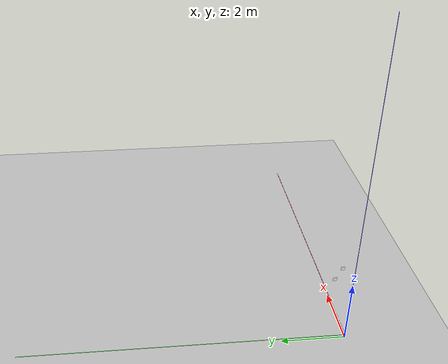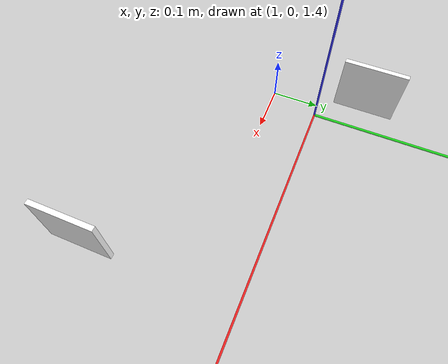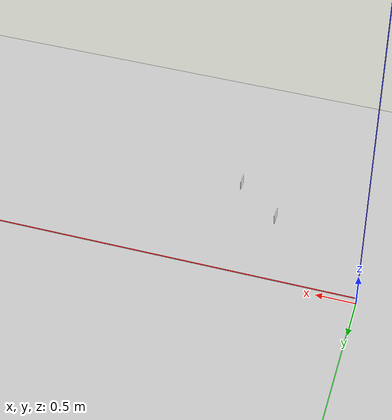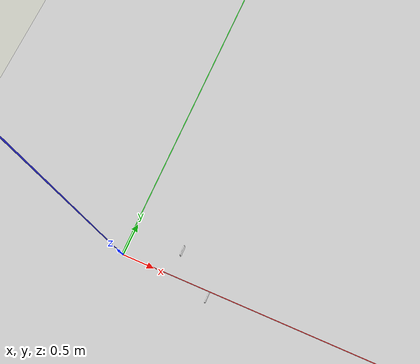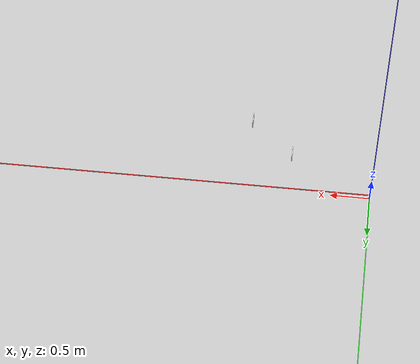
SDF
<sdf version="1.9">
 <world name="apriltag_two_tags">
  <physics name="4ms" type="ignore">
   <max_step_size>0.004</max_step_size>
   <real_time_factor>1.0</real_time_factor>
  </physics>
  <plugin filename="gz-sim-physics-system" name="gz::sim::systems::Physics"/>
  <plugin filename="gz-sim-sensors-system" name="gz::sim::systems::Sensors">
   <render_engine>ogre2</render_engine>
  </plugin>
  <plugin filename="gz-sim-user-commands-system" name="gz::sim::systems::UserCommands"/>
  <plugin filename="gz-sim-scene-broadcaster-system" name="gz::sim::systems::SceneBroadcaster"/>
  <plugin filename="gz-sim-imu-system" name="gz::sim::systems::Imu"/>
  <plugin filename="gz-sim-navsat-system" name="gz::sim::systems::NavSat"/>
  <gravity>0 0 -9.8000000000000007</gravity>
  <magnetic_field>5.5644999999999998e-06 2.2875799999999999e-05 -4.2388400000000002e-05</magnetic_field>
  <atmosphere type="adiabatic"/>
  <scene><ambient>1.0 1.0 1.0</ambient><background>0.8 0.8 0.8</background></scene>
  <spherical_coordinates>
   <latitude_deg>-35.363262</latitude_deg>
   <longitude_deg>149.165237</longitude_deg>
   <elevation>584</elevation>
   <heading_deg>0</heading_deg>
   <surface_model>EARTH_WGS84</surface_model>
  </spherical_coordinates>
  <light type="directional" name="sun">
   <pose>0 0 10 0 0 0</pose>
   <diffuse>0.8 0.8 0.8 1</diffuse>
   <specular>0.8 0.8 0.8 1</specular>
   <attenuation>
    <range>1000</range>
    <constant>0.9</constant>
    <linear>0.01</linear>
    <quadratic>0.001</quadratic>
   </attenuation>
   <direction>-0.5 0.1 -0.9</direction>
  </light>
  <model name="axes">
   <static>1</static>
   <link name="link">
    <visual name="r">
     <cast_shadows>0</cast_shadows>
     <pose>5 0 0.1 0 0 0</pose>
     <geometry><box><size>10 0.01 0.01</size></box></geometry>
     <material>
      <ambient>1 0 0 0.8</ambient>
      <diffuse>1 0 0 0.8</diffuse>
      <emissive>1 0 0 0.8</emissive>
      <specular>0.5 0.5 0.5 0.8</specular>
     </material>
    </visual>
    <visual name="g">
     <cast_shadows>0</cast_shadows>
     <pose>0 5 0.1 0 0 0</pose>
     <geometry><box><size>0.01 10 0.01</size></box></geometry>
     <material>
      <ambient>0 1 0 0.8</ambient>
      <diffuse>0 1 0 0.8</diffuse>
      <emissive>0 1 0 0.8</emissive>
      <specular>0.5 0.5 0.5 0.8</specular>
     </material>
    </visual>
    <visual name="b">
     <cast_shadows>0</cast_shadows>
     <pose>0 0 5.1 0 0 0</pose>
     <geometry><box><size>0.01 0.01 10</size></box></geometry>
     <material>
      <ambient>0 0 1 0.8</ambient>
      <diffuse>0 0 1 0.8</diffuse>
      <emissive>0 0 1 0.8</emissive>
      <specular>0.5 0.5 0.5 0.8</specular>
     </material>
    </visual>
    <sensor name="navsat_sensor" type="navsat"><always_on>1</always_on><update_rate>1</update_rate></sensor>
   </link>
  </model>
  <model name="ground_plane">
   <static>true</static>
   <link name="link">
    <collision name="collision">
     <geometry><plane><normal>0 0 1</normal><size>100 100</size></plane></geometry>
    </collision>
    <visual name="visual">
     <geometry><plane><normal>0 0 1</normal><size>100 100</size></plane></geometry>
     <material>
      <ambient>0.800000012 0.800000012 0.800000012 1</ambient>
      <diffuse>0.800000012 0.800000012 0.800000012 1</diffuse>
      <specular>0.800000012 0.800000012 0.800000012 1</specular>
     </material>
    </visual>
    <inertial>
     <mass>1</mass>
     <inertia><ixx>1</ixx><ixy>0</ixy><ixz>0</ixz><iyy>1</iyy><iyz>0</iyz><izz>1</izz></inertia>
    </inertial>
   </link>
  </model>
  <include>
   <uri>model://apriltag_36h11_0</uri>
   <name>apriltag_ref</name>
   <pose>1.5 -0.2 1.5 0 1.5708 0</pose>
  </include>
  <model name="apriltag_vib_oscillator">
   <pose>1 0.2 1.5 0 0 0</pose>
   <static>false</static>
   <link name="base">
    <gravity>false</gravity>
    <inertial>
     <mass>1.0</mass>
     <inertia><ixx>0.1</ixx><ixy>0</ixy><ixz>0</ixz><iyy>0.1</iyy><iyz>0</iyz><izz>0.1</izz></inertia>
    </inertial>
   </link>
   <joint name="world_joint" type="fixed"><parent>world</parent><child>base</child></joint>
   <link name="tag_link">
    <pose>0 0 0 0 1.5708 0</pose>
    <gravity>false</gravity>
    <inertial>
     <mass>0.1</mass>
     <inertia><ixx>0.001</ixx><ixy>0</ixy><ixz>0</ixz><iyy>0.001</iyy><iyz>0</iyz><izz>0.001</izz></inertia>
    </inertial>
    <visual name="visual">
     <geometry><box><size>0.127 0.127 0.01</size></box></geometry>
     <material>
      <ambient>1 1 1 1</ambient>
      <diffuse>1 1 1 1</diffuse>
      <specular>0.5 0.5 0.5 1</specular>
      <pbr>
       <metal>
        <albedo_map>model://apriltag_36h11_1/materials/textures/tag36h11_1.png</albedo_map>
        <roughness>0.5</roughness>
        <metalness>0.0</metalness>
       </metal>
      </pbr>
     </material>
    </visual>
    <collision name="collision"><geometry><box><size>0.127 0.127 0.01</size></box></geometry></collision>
   </link>
   <joint name="oscillator_joint" type="prismatic">
    <parent>base</parent>
    <child>tag_link</child>
    <axis>
     <xyz>0 1 0</xyz>
     <limit><lower>-0.1</lower><upper>0.1</upper></limit>
     <dynamics>
      <spring_reference>0</spring_reference>
      <spring_stiffness>0.0</spring_stiffness>
      <damping>0.1</damping>
     </dynamics>
    </axis>
   </joint>
   <plugin filename="gz-sim-joint-position-controller-system" name="gz::sim::systems::JointPositionController">
    <joint_name>oscillator_joint</joint_name>
    <topic>/model/apriltag_vib_oscillator/joint/oscillator_joint/cmd_pos</topic>
    <p_gain>500</p_gain>
    <d_gain>50</d_gain>
   </plugin>
  </model>
 </world>
</sdf>

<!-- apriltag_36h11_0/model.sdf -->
<sdf version="1.9">
  <model name="apriltag_36h11_0">
    <static>true</static>
    <link name="link">
      <visual name="visual">
        <geometry>
          <box>
            <size>0.127 0.127 0.01</size>
          </box>
        </geometry>
        <material>
          <ambient>1 1 1 1</ambient>
          <diffuse>1 1 1 1</diffuse>
          <specular>0.5 0.5 0.5 1</specular>
          <pbr>
            <metal>
              <albedo_map>materials/textures/tag36h11_0.png</albedo_map>
              <roughness>0.5</roughness>
              <metalness>0.0</metalness>
            </metal>
          </pbr>
        </material>
      </visual>
      <collision name="collision">
        <geometry>
          <box>
            <size>0.127 0.127 0.01</size>
          </box>
        </geometry>
      </collision>
    </link>
  </model>
</sdf>
